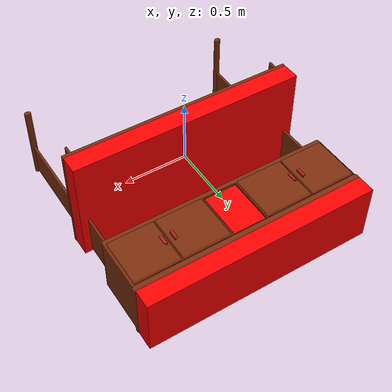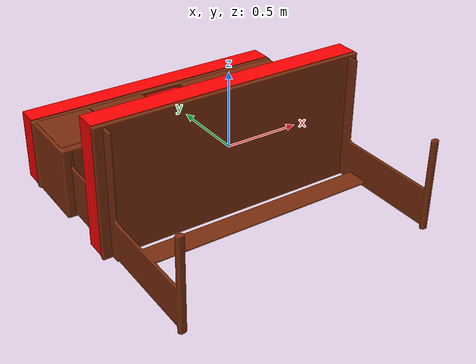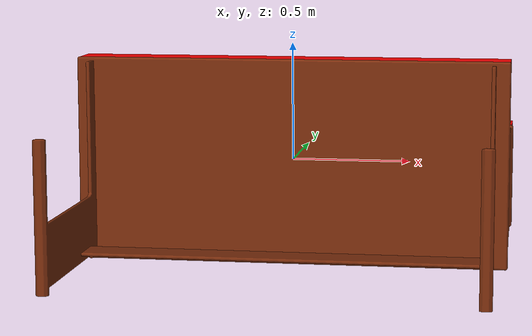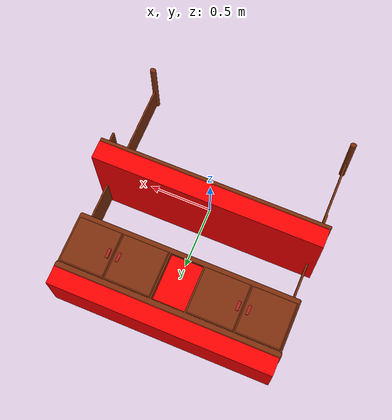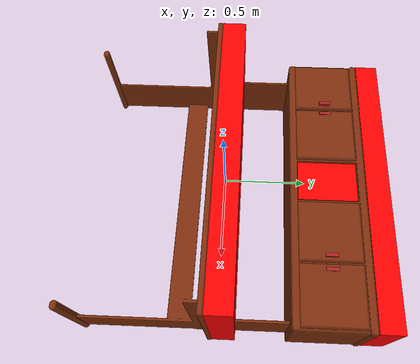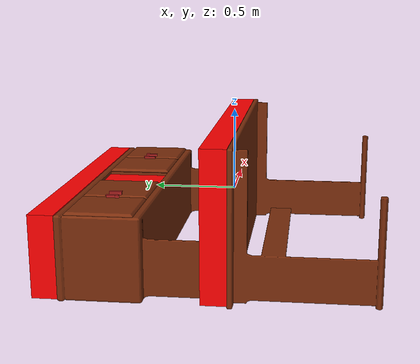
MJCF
<mujoco model="Desk_310_1">
  <compiler angle="radian" boundmass="0.01"/>

  <default>
    <default class="/">
      <default class="__VISUAL_MJT__">
        <geom contype="0" conaffinity="0"/>
      </default>
      <default class="__STRUCTURAL_MJT__">
        <geom contype="8" conaffinity="15" group="4" friction="0.9 0.9 0.001" solref="0.025" solimp="0.998 0.998"/>
      </default>
      <default class="__DYNAMIC_MJT__">
        <geom conaffinity="15" group="4" friction="0.9 0.9 0.001" solref="0.025" solimp="0.998 0.998"/>
      </default>
    </default>
  </default>

  <asset>
    <texture type="2d" name="LightWoodCounters3" file="LightWoodCounters.png"/>
    <texture type="2d" name="HammeredMetal_AlbedoTransparency_2" file="HammeredMetal_AlbedoTransparency.png"/>
    <material name="material_LightWoodCounters4" class="/" texture="LightWoodCounters3" rgba="0.686275 0.34902 0.156863 1" metallic="0" roughness="0.3" colormapwrap="repeat"/>
    <material name="material_LightWoodCounters3" class="/" texture="LightWoodCounters3" rgba="0.686275 0.34902 0.156863 1" metallic="0" roughness="0.3" clearcoat="0.18" clearcoatroughness="0" colormapwrap="repeat"/>
    <material name="material_HammeredMetal_AlbedoTransparency_2" class="/" texture="HammeredMetal_AlbedoTransparency_2" rgba="0.835294 0.807843 0.764706 1" metallic="1" roughness="0.13" colormapwrap="repeat"/>
    <mesh name="Desk_310_1_DeskMesh_0" class="/" content_type="model/obj" file="Desk_310_1_DeskMesh/Desk_310_1_DeskMesh_0.obj"/>
    <mesh name="Desk_310_1_DeskMesh_1" class="/" content_type="model/obj" file="Desk_310_1_DeskMesh/Desk_310_1_DeskMesh_1.obj"/>
    <mesh name="Desk_310_1_CabinetDoorMesh_02" class="/" content_type="model/obj" file="Desk_310_1_CabinetDoorMesh_02/Desk_310_1_CabinetDoorMesh_02.obj"/>
    <mesh name="Desk_310_1_handle_3_76mm_02" class="/" content_type="model/obj" file="Desk_310_1_handle_3_76mm_02/Desk_310_1_handle_3_76mm_02.obj"/>
    <mesh name="Desk_310_1_CabinetDoorMesh_03" class="/" content_type="model/obj" file="Desk_310_1_CabinetDoorMesh_03/Desk_310_1_CabinetDoorMesh_03.obj"/>
    <mesh name="Desk_310_1_handle_3_76mm_03" class="/" content_type="model/obj" file="Desk_310_1_handle_3_76mm_03/Desk_310_1_handle_3_76mm_03.obj"/>
    <mesh name="Desk_310_1_CabinetDoorMesh_01" class="/" content_type="model/obj" file="Desk_310_1_CabinetDoorMesh_01/Desk_310_1_CabinetDoorMesh_01.obj"/>
    <mesh name="Desk_310_1_handle_3_76mm_01" class="/" content_type="model/obj" file="Desk_310_1_handle_3_76mm_01/Desk_310_1_handle_3_76mm_01.obj"/>
    <mesh name="Desk_310_1_CabinetDoorMesh_04" class="/" content_type="model/obj" file="Desk_310_1_CabinetDoorMesh_04/Desk_310_1_CabinetDoorMesh_04.obj"/>
    <mesh name="Desk_310_1_handle_3_76mm_04" class="/" content_type="model/obj" file="Desk_310_1_handle_3_76mm_04/Desk_310_1_handle_3_76mm_04.obj"/>
    <mesh name="Desk_310_1_DeskMesh_0_collision_5" content_type="model/obj" file="Desk_310_1_DeskMesh/Desk_310_1_DeskMesh_0/Desk_310_1_DeskMesh_0_collision_5.obj"/>
    <mesh name="Desk_310_1_DeskMesh_0_collision_28" content_type="model/obj" file="Desk_310_1_DeskMesh/Desk_310_1_DeskMesh_0/Desk_310_1_DeskMesh_0_collision_28.obj"/>
    <mesh name="Desk_310_1_DeskMesh_0_collision_18" content_type="model/obj" file="Desk_310_1_DeskMesh/Desk_310_1_DeskMesh_0/Desk_310_1_DeskMesh_0_collision_18.obj"/>
    <mesh name="Desk_310_1_DeskMesh_0_collision_15" content_type="model/obj" file="Desk_310_1_DeskMesh/Desk_310_1_DeskMesh_0/Desk_310_1_DeskMesh_0_collision_15.obj"/>
    <mesh name="Desk_310_1_DeskMesh_0_collision_10" content_type="model/obj" file="Desk_310_1_DeskMesh/Desk_310_1_DeskMesh_0/Desk_310_1_DeskMesh_0_collision_10.obj"/>
    <mesh name="Desk_310_1_DeskMesh_0_collision_2" content_type="model/obj" file="Desk_310_1_DeskMesh/Desk_310_1_DeskMesh_0/Desk_310_1_DeskMesh_0_collision_2.obj"/>
    <mesh name="Desk_310_1_DeskMesh_0_collision_20" content_type="model/obj" file="Desk_310_1_DeskMesh/Desk_310_1_DeskMesh_0/Desk_310_1_DeskMesh_0_collision_20.obj"/>
    <mesh name="Desk_310_1_DeskMesh_0_collision_12" content_type="model/obj" file="Desk_310_1_DeskMesh/Desk_310_1_DeskMesh_0/Desk_310_1_DeskMesh_0_collision_12.obj"/>
    <mesh name="Desk_310_1_DeskMesh_0_collision_19" content_type="model/obj" file="Desk_310_1_DeskMesh/Desk_310_1_DeskMesh_0/Desk_310_1_DeskMesh_0_collision_19.obj"/>
    <mesh name="Desk_310_1_DeskMesh_0_collision_14" content_type="model/obj" file="Desk_310_1_DeskMesh/Desk_310_1_DeskMesh_0/Desk_310_1_DeskMesh_0_collision_14.obj"/>
    <mesh name="Desk_310_1_DeskMesh_0_collision_4" content_type="model/obj" file="Desk_310_1_DeskMesh/Desk_310_1_DeskMesh_0/Desk_310_1_DeskMesh_0_collision_4.obj"/>
    <mesh name="Desk_310_1_DeskMesh_0_collision_25" content_type="model/obj" file="Desk_310_1_DeskMesh/Desk_310_1_DeskMesh_0/Desk_310_1_DeskMesh_0_collision_25.obj"/>
    <mesh name="Desk_310_1_DeskMesh_0_collision_16" content_type="model/obj" file="Desk_310_1_DeskMesh/Desk_310_1_DeskMesh_0/Desk_310_1_DeskMesh_0_collision_16.obj"/>
    <mesh name="Desk_310_1_DeskMesh_0_collision_8" content_type="model/obj" file="Desk_310_1_DeskMesh/Desk_310_1_DeskMesh_0/Desk_310_1_DeskMesh_0_collision_8.obj"/>
    <mesh name="Desk_310_1_DeskMesh_0_collision_3" content_type="model/obj" file="Desk_310_1_DeskMesh/Desk_310_1_DeskMesh_0/Desk_310_1_DeskMesh_0_collision_3.obj"/>
    <mesh name="Desk_310_1_DeskMesh_0_collision_17" content_type="model/obj" file="Desk_310_1_DeskMesh/Desk_310_1_DeskMesh_0/Desk_310_1_DeskMesh_0_collision_17.obj"/>
    <mesh name="Desk_310_1_DeskMesh_0_collision_22" content_type="model/obj" file="Desk_310_1_DeskMesh/Desk_310_1_DeskMesh_0/Desk_310_1_DeskMesh_0_collision_22.obj"/>
    <mesh name="Desk_310_1_DeskMesh_0_collision_24" content_type="model/obj" file="Desk_310_1_DeskMesh/Desk_310_1_DeskMesh_0/Desk_310_1_DeskMesh_0_collision_24.obj"/>
    <mesh name="Desk_310_1_DeskMesh_0_collision_26" content_type="model/obj" file="Desk_310_1_DeskMesh/Desk_310_1_DeskMesh_0/Desk_310_1_DeskMesh_0_collision_26.obj"/>
    <mesh name="Desk_310_1_DeskMesh_0_collision_29" content_type="model/obj" file="Desk_310_1_DeskMesh/Desk_310_1_DeskMesh_0/Desk_310_1_DeskMesh_0_collision_29.obj"/>
    <mesh name="Desk_310_1_DeskMesh_0_collision_6" content_type="model/obj" file="Desk_310_1_DeskMesh/Desk_310_1_DeskMesh_0/Desk_310_1_DeskMesh_0_collision_6.obj"/>
    <mesh name="Desk_310_1_DeskMesh_0_collision_1" content_type="model/obj" file="Desk_310_1_DeskMesh/Desk_310_1_DeskMesh_0/Desk_310_1_DeskMesh_0_collision_1.obj"/>
    <mesh name="Desk_310_1_DeskMesh_0_collision_21" content_type="model/obj" file="Desk_310_1_DeskMesh/Desk_310_1_DeskMesh_0/Desk_310_1_DeskMesh_0_collision_21.obj"/>
    <mesh name="Desk_310_1_DeskMesh_0_collision_11" content_type="model/obj" file="Desk_310_1_DeskMesh/Desk_310_1_DeskMesh_0/Desk_310_1_DeskMesh_0_collision_11.obj"/>
    <mesh name="Desk_310_1_DeskMesh_0_collision_27" content_type="model/obj" file="Desk_310_1_DeskMesh/Desk_310_1_DeskMesh_0/Desk_310_1_DeskMesh_0_collision_27.obj"/>
    <mesh name="Desk_310_1_DeskMesh_0_collision_0" content_type="model/obj" file="Desk_310_1_DeskMesh/Desk_310_1_DeskMesh_0/Desk_310_1_DeskMesh_0_collision_0.obj"/>
    <mesh name="Desk_310_1_DeskMesh_0_collision_23" content_type="model/obj" file="Desk_310_1_DeskMesh/Desk_310_1_DeskMesh_0/Desk_310_1_DeskMesh_0_collision_23.obj"/>
    <mesh name="Desk_310_1_DeskMesh_0_collision_7" content_type="model/obj" file="Desk_310_1_DeskMesh/Desk_310_1_DeskMesh_0/Desk_310_1_DeskMesh_0_collision_7.obj"/>
    <mesh name="Desk_310_1_DeskMesh_0_collision_13" content_type="model/obj" file="Desk_310_1_DeskMesh/Desk_310_1_DeskMesh_0/Desk_310_1_DeskMesh_0_collision_13.obj"/>
    <mesh name="Desk_310_1_DeskMesh_1_collision_3" content_type="model/obj" file="Desk_310_1_DeskMesh/Desk_310_1_DeskMesh_1/Desk_310_1_DeskMesh_1_collision_3.obj"/>
    <mesh name="Desk_310_1_DeskMesh_1_collision_18" content_type="model/obj" file="Desk_310_1_DeskMesh/Desk_310_1_DeskMesh_1/Desk_310_1_DeskMesh_1_collision_18.obj"/>
    <mesh name="Desk_310_1_DeskMesh_1_collision_23" content_type="model/obj" file="Desk_310_1_DeskMesh/Desk_310_1_DeskMesh_1/Desk_310_1_DeskMesh_1_collision_23.obj"/>
    <mesh name="Desk_310_1_DeskMesh_1_collision_2" content_type="model/obj" file="Desk_310_1_DeskMesh/Desk_310_1_DeskMesh_1/Desk_310_1_DeskMesh_1_collision_2.obj"/>
    <mesh name="Desk_310_1_DeskMesh_1_collision_19" content_type="model/obj" file="Desk_310_1_DeskMesh/Desk_310_1_DeskMesh_1/Desk_310_1_DeskMesh_1_collision_19.obj"/>
    <mesh name="Desk_310_1_DeskMesh_1_collision_12" content_type="model/obj" file="Desk_310_1_DeskMesh/Desk_310_1_DeskMesh_1/Desk_310_1_DeskMesh_1_collision_12.obj"/>
    <mesh name="Desk_310_1_DeskMesh_1_collision_0" content_type="model/obj" file="Desk_310_1_DeskMesh/Desk_310_1_DeskMesh_1/Desk_310_1_DeskMesh_1_collision_0.obj"/>
    <mesh name="Desk_310_1_DeskMesh_1_collision_14" content_type="model/obj" file="Desk_310_1_DeskMesh/Desk_310_1_DeskMesh_1/Desk_310_1_DeskMesh_1_collision_14.obj"/>
    <mesh name="Desk_310_1_DeskMesh_1_collision_4" content_type="model/obj" file="Desk_310_1_DeskMesh/Desk_310_1_DeskMesh_1/Desk_310_1_DeskMesh_1_collision_4.obj"/>
    <mesh name="Desk_310_1_DeskMesh_1_collision_20" content_type="model/obj" file="Desk_310_1_DeskMesh/Desk_310_1_DeskMesh_1/Desk_310_1_DeskMesh_1_collision_20.obj"/>
    <mesh name="Desk_310_1_DeskMesh_1_collision_7" content_type="model/obj" file="Desk_310_1_DeskMesh/Desk_310_1_DeskMesh_1/Desk_310_1_DeskMesh_1_collision_7.obj"/>
    <mesh name="Desk_310_1_DeskMesh_1_collision_6" content_type="model/obj" file="Desk_310_1_DeskMesh/Desk_310_1_DeskMesh_1/Desk_310_1_DeskMesh_1_collision_6.obj"/>
    <mesh name="Desk_310_1_DeskMesh_1_collision_5" content_type="model/obj" file="Desk_310_1_DeskMesh/Desk_310_1_DeskMesh_1/Desk_310_1_DeskMesh_1_collision_5.obj"/>
    <mesh name="Desk_310_1_DeskMesh_1_collision_17" content_type="model/obj" file="Desk_310_1_DeskMesh/Desk_310_1_DeskMesh_1/Desk_310_1_DeskMesh_1_collision_17.obj"/>
    <mesh name="Desk_310_1_DeskMesh_1_collision_22" content_type="model/obj" file="Desk_310_1_DeskMesh/Desk_310_1_DeskMesh_1/Desk_310_1_DeskMesh_1_collision_22.obj"/>
    <mesh name="Desk_310_1_DeskMesh_1_collision_16" content_type="model/obj" file="Desk_310_1_DeskMesh/Desk_310_1_DeskMesh_1/Desk_310_1_DeskMesh_1_collision_16.obj"/>
    <mesh name="Desk_310_1_DeskMesh_1_collision_8" content_type="model/obj" file="Desk_310_1_DeskMesh/Desk_310_1_DeskMesh_1/Desk_310_1_DeskMesh_1_collision_8.obj"/>
    <mesh name="Desk_310_1_DeskMesh_1_collision_24" content_type="model/obj" file="Desk_310_1_DeskMesh/Desk_310_1_DeskMesh_1/Desk_310_1_DeskMesh_1_collision_24.obj"/>
    <mesh name="Desk_310_1_DeskMesh_1_collision_1" content_type="model/obj" file="Desk_310_1_DeskMesh/Desk_310_1_DeskMesh_1/Desk_310_1_DeskMesh_1_collision_1.obj"/>
    <mesh name="Desk_310_1_DeskMesh_1_collision_11" content_type="model/obj" file="Desk_310_1_DeskMesh/Desk_310_1_DeskMesh_1/Desk_310_1_DeskMesh_1_collision_11.obj"/>
    <mesh name="Desk_310_1_DeskMesh_1_collision_10" content_type="model/obj" file="Desk_310_1_DeskMesh/Desk_310_1_DeskMesh_1/Desk_310_1_DeskMesh_1_collision_10.obj"/>
    <mesh name="Desk_310_1_DeskMesh_1_collision_9" content_type="model/obj" file="Desk_310_1_DeskMesh/Desk_310_1_DeskMesh_1/Desk_310_1_DeskMesh_1_collision_9.obj"/>
    <mesh name="Desk_310_1_DeskMesh_1_collision_15" content_type="model/obj" file="Desk_310_1_DeskMesh/Desk_310_1_DeskMesh_1/Desk_310_1_DeskMesh_1_collision_15.obj"/>
    <mesh name="Desk_310_1_DeskMesh_1_collision_13" content_type="model/obj" file="Desk_310_1_DeskMesh/Desk_310_1_DeskMesh_1/Desk_310_1_DeskMesh_1_collision_13.obj"/>
    <mesh name="Desk_310_1_DeskMesh_1_collision_21" content_type="model/obj" file="Desk_310_1_DeskMesh/Desk_310_1_DeskMesh_1/Desk_310_1_DeskMesh_1_collision_21.obj"/>
    <mesh name="Desk_310_1_CabinetDoorMesh_02_collision_0" content_type="model/obj" file="Desk_310_1_CabinetDoorMesh_02/Desk_310_1_CabinetDoorMesh_02/Desk_310_1_CabinetDoorMesh_02_collision_0.obj"/>
    <mesh name="Desk_310_1_CabinetDoorMesh_03_collision_0" content_type="model/obj" file="Desk_310_1_CabinetDoorMesh_03/Desk_310_1_CabinetDoorMesh_03/Desk_310_1_CabinetDoorMesh_03_collision_0.obj"/>
    <mesh name="Desk_310_1_CabinetDoorMesh_01_collision_0" content_type="model/obj" file="Desk_310_1_CabinetDoorMesh_01/Desk_310_1_CabinetDoorMesh_01/Desk_310_1_CabinetDoorMesh_01_collision_0.obj"/>
    <mesh name="Desk_310_1_CabinetDoorMesh_04_collision_0" content_type="model/obj" file="Desk_310_1_CabinetDoorMesh_04/Desk_310_1_CabinetDoorMesh_04/Desk_310_1_CabinetDoorMesh_04_collision_0.obj"/>
    <mesh name="Desk_310_1_handle_3_76mm_02_collision_1" content_type="model/obj" file="Desk_310_1_handle_3_76mm_02/Desk_310_1_handle_3_76mm_02/Desk_310_1_handle_3_76mm_02_collision_1.obj"/>
    <mesh name="Desk_310_1_handle_3_76mm_02_collision_0" content_type="model/obj" file="Desk_310_1_handle_3_76mm_02/Desk_310_1_handle_3_76mm_02/Desk_310_1_handle_3_76mm_02_collision_0.obj"/>
    <mesh name="Desk_310_1_handle_3_76mm_03_collision_0" content_type="model/obj" file="Desk_310_1_handle_3_76mm_03/Desk_310_1_handle_3_76mm_03/Desk_310_1_handle_3_76mm_03_collision_0.obj"/>
    <mesh name="Desk_310_1_handle_3_76mm_03_collision_1" content_type="model/obj" file="Desk_310_1_handle_3_76mm_03/Desk_310_1_handle_3_76mm_03/Desk_310_1_handle_3_76mm_03_collision_1.obj"/>
    <mesh name="Desk_310_1_handle_3_76mm_01_collision_0" content_type="model/obj" file="Desk_310_1_handle_3_76mm_01/Desk_310_1_handle_3_76mm_01/Desk_310_1_handle_3_76mm_01_collision_0.obj"/>
    <mesh name="Desk_310_1_handle_3_76mm_01_collision_1" content_type="model/obj" file="Desk_310_1_handle_3_76mm_01/Desk_310_1_handle_3_76mm_01/Desk_310_1_handle_3_76mm_01_collision_1.obj"/>
    <mesh name="Desk_310_1_handle_3_76mm_04_collision_0" content_type="model/obj" file="Desk_310_1_handle_3_76mm_04/Desk_310_1_handle_3_76mm_04/Desk_310_1_handle_3_76mm_04_collision_0.obj"/>
    <mesh name="Desk_310_1_handle_3_76mm_04_collision_1" content_type="model/obj" file="Desk_310_1_handle_3_76mm_04/Desk_310_1_handle_3_76mm_04/Desk_310_1_handle_3_76mm_04_collision_1.obj"/>
  </asset>

  <worldbody>
    <body name="Desk_310_1">
      <body name="Desk_310_1_DeskMesh" pos="-0.00108 -0.884 -0.0039">
        <geom name="Desk_310_1_DeskMesh_0" class="__VISUAL_MJT__" type="mesh" density="160" material="material_LightWoodCounters4" mesh="Desk_310_1_DeskMesh_0"/>
        <geom name="Desk_310_1_DeskMesh_1" class="__VISUAL_MJT__" type="mesh" density="160" material="material_LightWoodCounters3" mesh="Desk_310_1_DeskMesh_1"/>
        <geom name="Desk_310_1_DeskMesh_Desk_310_1_DeskMesh_0_MeshCollider_0" class="__DYNAMIC_MJT__" type="mesh" density="160" rgba="0.678296 0.951096 0.336739 1" mesh="Desk_310_1_DeskMesh_0_collision_5"/>
        <geom name="Desk_310_1_DeskMesh_Desk_310_1_DeskMesh_0_MeshCollider_1" class="__DYNAMIC_MJT__" type="mesh" density="160" rgba="0.53053 0.750794 0.587283 1" mesh="Desk_310_1_DeskMesh_0_collision_28"/>
        <geom name="Desk_310_1_DeskMesh_Desk_310_1_DeskMesh_0_MeshCollider_2" class="__DYNAMIC_MJT__" type="mesh" density="160" rgba="0.0517538 0.23714 0.98183 1" mesh="Desk_310_1_DeskMesh_0_collision_18"/>
        <geom name="Desk_310_1_DeskMesh_Desk_310_1_DeskMesh_0_MeshCollider_3" class="__DYNAMIC_MJT__" type="mesh" density="160" rgba="0.262121 0.788895 0.854143 1" mesh="Desk_310_1_DeskMesh_0_collision_15"/>
        <geom name="Desk_310_1_DeskMesh_Desk_310_1_DeskMesh_0_MeshCollider_4" class="__DYNAMIC_MJT__" type="mesh" density="160" rgba="0.85074 0.39086 0.856247 1" mesh="Desk_310_1_DeskMesh_0_collision_10"/>
        <geom name="Desk_310_1_DeskMesh_Desk_310_1_DeskMesh_0_MeshCollider_5" class="__DYNAMIC_MJT__" type="mesh" density="160" rgba="0.384703 0.0291451 0.426568 1" mesh="Desk_310_1_DeskMesh_0_collision_2"/>
        <geom name="Desk_310_1_DeskMesh_Desk_310_1_DeskMesh_0_MeshCollider_6" class="__DYNAMIC_MJT__" type="mesh" density="160" rgba="0.389199 0.167586 0.213791 1" mesh="Desk_310_1_DeskMesh_0_collision_20"/>
        <geom name="Desk_310_1_DeskMesh_Desk_310_1_DeskMesh_0_MeshCollider_8" class="__DYNAMIC_MJT__" type="mesh" density="160" rgba="0.0291747 0.621879 0.671142 1" mesh="Desk_310_1_DeskMesh_0_collision_12"/>
        <geom name="Desk_310_1_DeskMesh_Desk_310_1_DeskMesh_0_MeshCollider_9" class="__DYNAMIC_MJT__" type="mesh" density="160" rgba="0.0444809 0.87775 0.244225 1" mesh="Desk_310_1_DeskMesh_0_collision_19"/>
        <geom name="Desk_310_1_DeskMesh_Desk_310_1_DeskMesh_0_MeshCollider_10" class="__DYNAMIC_MJT__" type="mesh" density="160" rgba="0.449488 0.916086 0.228162 1" mesh="Desk_310_1_DeskMesh_0_collision_14"/>
        <geom name="Desk_310_1_DeskMesh_Desk_310_1_DeskMesh_0_MeshCollider_11" class="__DYNAMIC_MJT__" type="mesh" density="160" rgba="0.582179 0.415215 0.309097 1" mesh="Desk_310_1_DeskMesh_0_collision_4"/>
        <geom name="Desk_310_1_DeskMesh_Desk_310_1_DeskMesh_0_MeshCollider_12" class="__DYNAMIC_MJT__" type="mesh" density="160" rgba="0.0499144 0.973909 0.196473 1" mesh="Desk_310_1_DeskMesh_0_collision_25"/>
        <geom name="Desk_310_1_DeskMesh_Desk_310_1_DeskMesh_0_MeshCollider_13" class="__DYNAMIC_MJT__" type="mesh" density="160" rgba="0.728669 0.573406 0.589658 1" mesh="Desk_310_1_DeskMesh_0_collision_16"/>
        <geom name="Desk_310_1_DeskMesh_Desk_310_1_DeskMesh_0_MeshCollider_14" class="__DYNAMIC_MJT__" type="mesh" density="160" rgba="0.0364696 0.734461 0.630564 1" mesh="Desk_310_1_DeskMesh_0_collision_8"/>
        <geom name="Desk_310_1_DeskMesh_Desk_310_1_DeskMesh_0_MeshCollider_15" class="__DYNAMIC_MJT__" type="mesh" density="160" rgba="0.688371 0.520608 0.405771 1" mesh="Desk_310_1_DeskMesh_0_collision_3"/>
        <geom name="Desk_310_1_DeskMesh_Desk_310_1_DeskMesh_0_MeshCollider_16" class="__DYNAMIC_MJT__" type="mesh" density="160" rgba="0.886222 0.857515 0.770415 1" mesh="Desk_310_1_DeskMesh_0_collision_17"/>
        <geom name="Desk_310_1_DeskMesh_Desk_310_1_DeskMesh_0_MeshCollider_17" class="__DYNAMIC_MJT__" type="mesh" density="160" rgba="0.979981 0.520857 0.445445 1" mesh="Desk_310_1_DeskMesh_0_collision_22"/>
        <geom name="Desk_310_1_DeskMesh_Desk_310_1_DeskMesh_0_MeshCollider_18" class="__DYNAMIC_MJT__" type="mesh" density="160" rgba="0.824166 0.554018 0.729073 1" mesh="Desk_310_1_DeskMesh_0_collision_24"/>
        <geom name="Desk_310_1_DeskMesh_Desk_310_1_DeskMesh_0_MeshCollider_19" class="__DYNAMIC_MJT__" type="mesh" density="160" rgba="0.306988 0.661513 0.19039 1" mesh="Desk_310_1_DeskMesh_0_collision_26"/>
        <geom name="Desk_310_1_DeskMesh_Desk_310_1_DeskMesh_0_MeshCollider_20" class="__DYNAMIC_MJT__" type="mesh" density="160" rgba="0.156197 0.39919 0.513313 1" mesh="Desk_310_1_DeskMesh_0_collision_29"/>
        <geom name="Desk_310_1_DeskMesh_Desk_310_1_DeskMesh_0_MeshCollider_21" class="__DYNAMIC_MJT__" type="mesh" density="160" rgba="0.534902 0.868026 0.30844 1" mesh="Desk_310_1_DeskMesh_0_collision_6"/>
        <geom name="Desk_310_1_DeskMesh_Desk_310_1_DeskMesh_0_MeshCollider_22" class="__DYNAMIC_MJT__" type="mesh" density="160" rgba="0.0917074 0.37306 0.28098 1" mesh="Desk_310_1_DeskMesh_0_collision_1"/>
        <geom name="Desk_310_1_DeskMesh_Desk_310_1_DeskMesh_0_MeshCollider_23" class="__DYNAMIC_MJT__" type="mesh" density="160" rgba="0.861562 0.596507 0.182305 1" mesh="Desk_310_1_DeskMesh_0_collision_21"/>
        <geom name="Desk_310_1_DeskMesh_Desk_310_1_DeskMesh_0_MeshCollider_24" class="__DYNAMIC_MJT__" type="mesh" density="160" rgba="0.721844 0.978452 0.24858 1" mesh="Desk_310_1_DeskMesh_0_collision_11"/>
        <geom name="Desk_310_1_DeskMesh_Desk_310_1_DeskMesh_0_MeshCollider_25" class="__DYNAMIC_MJT__" type="mesh" density="160" rgba="0.773113 0.677444 0.288542 1" mesh="Desk_310_1_DeskMesh_0_collision_27"/>
        <geom name="Desk_310_1_DeskMesh_Desk_310_1_DeskMesh_0_MeshCollider_26" class="__DYNAMIC_MJT__" type="mesh" density="160" rgba="0.609028 0.61634 0.282734 1" mesh="Desk_310_1_DeskMesh_0_collision_0"/>
        <geom name="Desk_310_1_DeskMesh_Desk_310_1_DeskMesh_0_MeshCollider_27" class="__DYNAMIC_MJT__" type="mesh" density="160" rgba="0.253245 0.459655 0.877698 1" mesh="Desk_310_1_DeskMesh_0_collision_23"/>
        <geom name="Desk_310_1_DeskMesh_Desk_310_1_DeskMesh_0_MeshCollider_28" class="__DYNAMIC_MJT__" type="mesh" density="160" rgba="0.643303 0.902584 0.21426 1" mesh="Desk_310_1_DeskMesh_0_collision_7"/>
        <geom name="Desk_310_1_DeskMesh_Desk_310_1_DeskMesh_0_MeshCollider_29" class="__DYNAMIC_MJT__" type="mesh" density="160" rgba="0.815406 0.00141215 0.565171 1" mesh="Desk_310_1_DeskMesh_0_collision_13"/>
        <geom name="Desk_310_1_DeskMesh_Desk_310_1_DeskMesh_1_MeshCollider_0" class="__DYNAMIC_MJT__" type="mesh" density="160" rgba="0.0432198 0.182461 0.816072 1" mesh="Desk_310_1_DeskMesh_1_collision_3"/>
        <geom name="Desk_310_1_DeskMesh_Desk_310_1_DeskMesh_1_MeshCollider_1" class="__DYNAMIC_MJT__" type="mesh" density="160" rgba="0.92528 0.199422 0.750119 1" mesh="Desk_310_1_DeskMesh_1_collision_18"/>
        <geom name="Desk_310_1_DeskMesh_Desk_310_1_DeskMesh_1_MeshCollider_2" class="__DYNAMIC_MJT__" type="mesh" density="160" rgba="0.465305 0.441322 0.480376 1" mesh="Desk_310_1_DeskMesh_1_collision_23"/>
        <geom name="Desk_310_1_DeskMesh_Desk_310_1_DeskMesh_1_MeshCollider_3" class="__DYNAMIC_MJT__" type="mesh" density="160" rgba="0.532157 0.763752 0.192419 1" mesh="Desk_310_1_DeskMesh_1_collision_2"/>
        <geom name="Desk_310_1_DeskMesh_Desk_310_1_DeskMesh_1_MeshCollider_4" class="__DYNAMIC_MJT__" type="mesh" density="160" rgba="0.0656561 0.429409 0.470446 1" mesh="Desk_310_1_DeskMesh_1_collision_19"/>
        <geom name="Desk_310_1_DeskMesh_Desk_310_1_DeskMesh_1_MeshCollider_5" class="__DYNAMIC_MJT__" type="mesh" density="160" rgba="0.409229 0.202464 0.570126 1" mesh="Desk_310_1_DeskMesh_1_collision_12"/>
        <geom name="Desk_310_1_DeskMesh_Desk_310_1_DeskMesh_1_MeshCollider_6" class="__DYNAMIC_MJT__" type="mesh" density="160" rgba="0.530026 0.501355 0.248288 1" mesh="Desk_310_1_DeskMesh_1_collision_0"/>
        <geom name="Desk_310_1_DeskMesh_Desk_310_1_DeskMesh_1_MeshCollider_7" class="__DYNAMIC_MJT__" type="mesh" density="160" rgba="0.324049 0.129351 0.380738 1" mesh="Desk_310_1_DeskMesh_1_collision_14"/>
        <geom name="Desk_310_1_DeskMesh_Desk_310_1_DeskMesh_1_MeshCollider_8" class="__DYNAMIC_MJT__" type="mesh" density="160" rgba="0.368479 0.62185 0.000916577 1" mesh="Desk_310_1_DeskMesh_1_collision_4"/>
        <geom name="Desk_310_1_DeskMesh_Desk_310_1_DeskMesh_1_MeshCollider_9" class="__DYNAMIC_MJT__" type="mesh" density="160" rgba="0.574879 0.370882 0.609094 1" mesh="Desk_310_1_DeskMesh_1_collision_20"/>
        <geom name="Desk_310_1_DeskMesh_Desk_310_1_DeskMesh_1_MeshCollider_10" class="__DYNAMIC_MJT__" type="mesh" density="160" rgba="0.526905 0.954325 0.852799 1" mesh="Desk_310_1_DeskMesh_1_collision_7"/>
        <geom name="Desk_310_1_DeskMesh_Desk_310_1_DeskMesh_1_MeshCollider_11" class="__DYNAMIC_MJT__" type="mesh" density="160" rgba="0.381265 0.901868 0.176184 1" mesh="Desk_310_1_DeskMesh_1_collision_6"/>
        <geom name="Desk_310_1_DeskMesh_Desk_310_1_DeskMesh_1_MeshCollider_12" class="__DYNAMIC_MJT__" type="mesh" density="160" rgba="0.963339 0.0280249 0.917246 1" mesh="Desk_310_1_DeskMesh_1_collision_5"/>
        <geom name="Desk_310_1_DeskMesh_Desk_310_1_DeskMesh_1_MeshCollider_13" class="__DYNAMIC_MJT__" type="mesh" density="160" rgba="0.697725 0.271271 0.763027 1" mesh="Desk_310_1_DeskMesh_1_collision_17"/>
        <geom name="Desk_310_1_DeskMesh_Desk_310_1_DeskMesh_1_MeshCollider_14" class="__DYNAMIC_MJT__" type="mesh" density="160" rgba="0.726854 0.369533 0.66483 1" mesh="Desk_310_1_DeskMesh_1_collision_22"/>
        <geom name="Desk_310_1_DeskMesh_Desk_310_1_DeskMesh_1_MeshCollider_15" class="__DYNAMIC_MJT__" type="mesh" density="160" rgba="0.816327 0.252435 0.634413 1" mesh="Desk_310_1_DeskMesh_1_collision_16"/>
        <geom name="Desk_310_1_DeskMesh_Desk_310_1_DeskMesh_1_MeshCollider_16" class="__DYNAMIC_MJT__" type="mesh" density="160" rgba="0.980943 0.297925 0.332138 1" mesh="Desk_310_1_DeskMesh_1_collision_8"/>
        <geom name="Desk_310_1_DeskMesh_Desk_310_1_DeskMesh_1_MeshCollider_17" class="__DYNAMIC_MJT__" type="mesh" density="160" rgba="0.361253 0.474052 0.275541 1" mesh="Desk_310_1_DeskMesh_1_collision_24"/>
        <geom name="Desk_310_1_DeskMesh_Desk_310_1_DeskMesh_1_MeshCollider_18" class="__DYNAMIC_MJT__" type="mesh" density="160" rgba="0.548874 0.679882 0.26148 1" mesh="Desk_310_1_DeskMesh_1_collision_1"/>
        <geom name="Desk_310_1_DeskMesh_Desk_310_1_DeskMesh_1_MeshCollider_19" class="__DYNAMIC_MJT__" type="mesh" density="160" rgba="0.141717 0.52578 0.000922206 1" mesh="Desk_310_1_DeskMesh_1_collision_11"/>
        <geom name="Desk_310_1_DeskMesh_Desk_310_1_DeskMesh_1_MeshCollider_20" class="__DYNAMIC_MJT__" type="mesh" density="160" rgba="0.967504 0.413082 0.453734 1" mesh="Desk_310_1_DeskMesh_1_collision_10"/>
        <geom name="Desk_310_1_DeskMesh_Desk_310_1_DeskMesh_1_MeshCollider_21" class="__DYNAMIC_MJT__" type="mesh" density="160" rgba="0.253752 0.353736 0.366839 1" mesh="Desk_310_1_DeskMesh_1_collision_9"/>
        <geom name="Desk_310_1_DeskMesh_Desk_310_1_DeskMesh_1_MeshCollider_22" class="__DYNAMIC_MJT__" type="mesh" density="160" rgba="0.370792 0.0191105 0.111519 1" mesh="Desk_310_1_DeskMesh_1_collision_15"/>
        <geom name="Desk_310_1_DeskMesh_Desk_310_1_DeskMesh_1_MeshCollider_23" class="__DYNAMIC_MJT__" type="mesh" density="160" rgba="0.226683 0.244234 0.951218 1" mesh="Desk_310_1_DeskMesh_1_collision_13"/>
        <geom name="Desk_310_1_DeskMesh_Desk_310_1_DeskMesh_1_MeshCollider_24" class="__DYNAMIC_MJT__" type="mesh" density="160" rgba="0.213499 0.961681 0.474003 1" mesh="Desk_310_1_DeskMesh_1_collision_21"/>
        <site name="Desk_310_1_DeskMesh_Receptacle_0" class="/" pos="0.00113094 0.906268 0.00632234" quat="0 1 0 0" size="0.921527 0.0732682 0.432285" type="box" rgba="1 0 0 1"/>
        <site name="Desk_310_1_DeskMesh_Receptacle_1" class="/" pos="0.00113082 1.84567 -0.185835" quat="0 1 0 0" size="0.921527 0.0732682 0.239933" type="box" rgba="1 0 0 1"/>
        <site name="Desk_310_1_DeskMesh_Receptacle_2" class="/" pos="-0.00473142 1.53191 -0.159239" quat="0 1 0 0" size="0.131429 0.186728 0.196312" type="box" rgba="1 0 0 1"/>
        <site name="Desk_310_1_DeskMesh_Receptacle_3" class="/" pos="-0.344069 1.53117 -0.156457" quat="0 1 0 0" size="0.183548 0.184952 0.204138" type="box" rgba="1 0 0 1"/>
        <site name="Desk_310_1_DeskMesh_Receptacle_4" class="/" pos="0.350116 1.53021 -0.155319" quat="0 1 0 0" size="0.174296 0.185916 0.203269" type="box" rgba="1 0 0 1"/>
        <site name="Desk_310_1_DeskMesh_Receptacle_5" class="/" pos="-0.728237 1.53187 -0.15524" quat="0 1 0 0" size="0.176412 0.184925 0.204133" type="box" rgba="1 0 0 1"/>
        <site name="Desk_310_1_DeskMesh_Receptacle_6" class="/" pos="0.719028 1.53117 -0.155829" quat="0 1 0 0" size="0.177572 0.185904 0.204653" type="box" rgba="1 0 0 1"/>
        <body name="Desk_310_1_CabinetDoorMesh_02" pos="-0.148602 1.53117 0.0545616">
          <joint name="Desk_310_1_joint" class="/" pos="0 0 0" axis="0 -1 0" range="-1.5708 0" damping="0.1" frictionloss="1.2"/>
          <geom name="Desk_310_1_CabinetDoorMesh_02" class="__VISUAL_MJT__" type="mesh" material="material_LightWoodCounters3" mesh="Desk_310_1_CabinetDoorMesh_02"/>
          <geom name="Desk_310_1_CabinetDoorMesh_02_Desk_310_1_CabinetDoorMesh_02_MeshCollider_0" class="__DYNAMIC_MJT__" type="mesh" rgba="0.807576 0.231909 0.699529 1" mesh="Desk_310_1_CabinetDoorMesh_02_collision_0"/>
          <body name="Desk_310_1_handle_3_76mm_02" pos="-0.353 0 0" quat="0.707107 0 0 -0.707107">
            <geom name="Desk_310_1_handle_3_76mm_02" class="__VISUAL_MJT__" type="mesh" material="material_HammeredMetal_AlbedoTransparency_2" mesh="Desk_310_1_handle_3_76mm_02"/>
            <geom name="Desk_310_1_handle_3_76mm_02_Desk_310_1_handle_3_76mm_02_MeshCollider_0" class="__DYNAMIC_MJT__" type="mesh" rgba="0.202549 0.907376 0.784579 1" mesh="Desk_310_1_handle_3_76mm_02_collision_1"/>
            <geom name="Desk_310_1_handle_3_76mm_02_Desk_310_1_handle_3_76mm_02_MeshCollider_1" class="__DYNAMIC_MJT__" type="mesh" rgba="0.191149 0.372851 0.132229 1" mesh="Desk_310_1_handle_3_76mm_02_collision_0"/>
          </body>
        </body>
        <body name="Desk_310_1_CabinetDoorMesh_03" pos="0.903774 1.53117 0.0529699">
          <joint name="Desk_310_1_CabinetDoorMesh_03__1" class="/" pos="0 0 0" axis="0 -1 0" range="-1.5708 0" damping="0.1" frictionloss="1.2"/>
          <geom name="Desk_310_1_CabinetDoorMesh_03" class="__VISUAL_MJT__" type="mesh" material="material_LightWoodCounters3" mesh="Desk_310_1_CabinetDoorMesh_03"/>
          <geom name="Desk_310_1_CabinetDoorMesh_03_Desk_310_1_CabinetDoorMesh_03_MeshCollider_0" class="__DYNAMIC_MJT__" type="mesh" rgba="0.18463 0.0682945 0.940079 1" mesh="Desk_310_1_CabinetDoorMesh_03_collision_0"/>
          <body name="Desk_310_1_handle_3_76mm_03" pos="-0.336 0 0" quat="0.707107 0 0 -0.707107">
            <geom name="Desk_310_1_handle_3_76mm_03" class="__VISUAL_MJT__" type="mesh" material="material_HammeredMetal_AlbedoTransparency_2" mesh="Desk_310_1_handle_3_76mm_03"/>
            <geom name="Desk_310_1_handle_3_76mm_03_Desk_310_1_handle_3_76mm_03_MeshCollider_0" class="__DYNAMIC_MJT__" type="mesh" rgba="0.727019 0.312341 0.662359 1" mesh="Desk_310_1_handle_3_76mm_03_collision_0"/>
            <geom name="Desk_310_1_handle_3_76mm_03_Desk_310_1_handle_3_76mm_03_MeshCollider_1" class="__DYNAMIC_MJT__" type="mesh" rgba="0.951074 0.616792 0.731893 1" mesh="Desk_310_1_handle_3_76mm_03_collision_1"/>
          </body>
        </body>
        <body name="Desk_310_1_CabinetDoorMesh_01" pos="-0.903774 1.53117 0.0545616">
          <joint name="Desk_310_1_CabinetDoorMesh_01__1" class="/" pos="0 0 0" axis="0 -1 0" range="0 1.5708" damping="0.1" frictionloss="1.2"/>
          <geom name="Desk_310_1_CabinetDoorMesh_01" class="__VISUAL_MJT__" type="mesh" material="material_LightWoodCounters3" mesh="Desk_310_1_CabinetDoorMesh_01"/>
          <geom name="Desk_310_1_CabinetDoorMesh_01_Desk_310_1_CabinetDoorMesh_01_MeshCollider_0" class="__DYNAMIC_MJT__" type="mesh" rgba="0.324416 0.590064 0.753457 1" mesh="Desk_310_1_CabinetDoorMesh_01_collision_0"/>
          <body name="Desk_310_1_handle_3_76mm_01" pos="0.335 0 0" quat="0.707107 0 0 0.707107">
            <geom name="Desk_310_1_handle_3_76mm_01" class="__VISUAL_MJT__" type="mesh" material="material_HammeredMetal_AlbedoTransparency_2" mesh="Desk_310_1_handle_3_76mm_01"/>
            <geom name="Desk_310_1_handle_3_76mm_01_Desk_310_1_handle_3_76mm_01_MeshCollider_0" class="__DYNAMIC_MJT__" type="mesh" rgba="0.98835 0.0867262 0.303882 1" mesh="Desk_310_1_handle_3_76mm_01_collision_0"/>
            <geom name="Desk_310_1_handle_3_76mm_01_Desk_310_1_handle_3_76mm_01_MeshCollider_1" class="__DYNAMIC_MJT__" type="mesh" rgba="0.190708 0.351 0.0678005 1" mesh="Desk_310_1_handle_3_76mm_01_collision_1"/>
          </body>
        </body>
        <body name="Desk_310_1_CabinetDoorMesh_04" pos="0.148602 1.53117 0.0529699">
          <joint name="Desk_310_1_CabinetDoorMesh_04__1" class="/" pos="0 0 0" axis="0 -1 0" range="0 1.5708" damping="0.1" frictionloss="1.2"/>
          <geom name="Desk_310_1_CabinetDoorMesh_04" class="__VISUAL_MJT__" type="mesh" material="material_LightWoodCounters3" mesh="Desk_310_1_CabinetDoorMesh_04"/>
          <geom name="Desk_310_1_CabinetDoorMesh_04_Desk_310_1_CabinetDoorMesh_04_MeshCollider_0" class="__DYNAMIC_MJT__" type="mesh" rgba="0.196626 0.990094 0.995068 1" mesh="Desk_310_1_CabinetDoorMesh_04_collision_0"/>
          <body name="Desk_310_1_handle_3_76mm_04" pos="0.35 0 0" quat="0.707107 0 0 0.707107">
            <geom name="Desk_310_1_handle_3_76mm_04" class="__VISUAL_MJT__" type="mesh" material="material_HammeredMetal_AlbedoTransparency_2" mesh="Desk_310_1_handle_3_76mm_04"/>
            <geom name="Desk_310_1_handle_3_76mm_04_Desk_310_1_handle_3_76mm_04_MeshCollider_0" class="__DYNAMIC_MJT__" type="mesh" rgba="0.950321 0.0981061 0.0575255 1" mesh="Desk_310_1_handle_3_76mm_04_collision_0"/>
            <geom name="Desk_310_1_handle_3_76mm_04_Desk_310_1_handle_3_76mm_04_MeshCollider_1" class="__DYNAMIC_MJT__" type="mesh" rgba="0.958682 0.842225 0.563617 1" mesh="Desk_310_1_handle_3_76mm_04_collision_1"/>
          </body>
        </body>
      </body>
    </body>
  </worldbody>

  <contact>
    <exclude name="//unnamed_contact_0" body1="Desk_310_1_DeskMesh" body2="Desk_310_1_CabinetDoorMesh_02"/>
    <exclude body1="Desk_310_1_DeskMesh" body2="Desk_310_1_CabinetDoorMesh_02"/>
    <exclude body1="Desk_310_1_DeskMesh" body2="Desk_310_1_handle_3_76mm_02"/>
    <exclude name="//unnamed_contact_1" body1="Desk_310_1_DeskMesh" body2="Desk_310_1_CabinetDoorMesh_03"/>
    <exclude body1="Desk_310_1_DeskMesh" body2="Desk_310_1_CabinetDoorMesh_03"/>
    <exclude body1="Desk_310_1_DeskMesh" body2="Desk_310_1_handle_3_76mm_03"/>
    <exclude name="//unnamed_contact_2" body1="Desk_310_1_DeskMesh" body2="Desk_310_1_CabinetDoorMesh_01"/>
    <exclude body1="Desk_310_1_DeskMesh" body2="Desk_310_1_CabinetDoorMesh_01"/>
    <exclude body1="Desk_310_1_DeskMesh" body2="Desk_310_1_handle_3_76mm_01"/>
    <exclude name="//unnamed_contact_3" body1="Desk_310_1_DeskMesh" body2="Desk_310_1_CabinetDoorMesh_04"/>
    <exclude body1="Desk_310_1_DeskMesh" body2="Desk_310_1_CabinetDoorMesh_04"/>
    <exclude body1="Desk_310_1_DeskMesh" body2="Desk_310_1_handle_3_76mm_04"/>
    <exclude body1="Desk_310_1_CabinetDoorMesh_02" body2="Desk_310_1_handle_3_76mm_02"/>
    <exclude body1="Desk_310_1_CabinetDoorMesh_02" body2="Desk_310_1_CabinetDoorMesh_03"/>
    <exclude body1="Desk_310_1_CabinetDoorMesh_02" body2="Desk_310_1_handle_3_76mm_03"/>
    <exclude body1="Desk_310_1_CabinetDoorMesh_02" body2="Desk_310_1_CabinetDoorMesh_01"/>
    <exclude body1="Desk_310_1_CabinetDoorMesh_02" body2="Desk_310_1_handle_3_76mm_01"/>
    <exclude body1="Desk_310_1_CabinetDoorMesh_02" body2="Desk_310_1_CabinetDoorMesh_04"/>
    <exclude body1="Desk_310_1_CabinetDoorMesh_02" body2="Desk_310_1_handle_3_76mm_04"/>
    <exclude body1="Desk_310_1_handle_3_76mm_02" body2="Desk_310_1_CabinetDoorMesh_03"/>
    <exclude body1="Desk_310_1_handle_3_76mm_02" body2="Desk_310_1_handle_3_76mm_03"/>
    <exclude body1="Desk_310_1_handle_3_76mm_02" body2="Desk_310_1_CabinetDoorMesh_01"/>
    <exclude body1="Desk_310_1_handle_3_76mm_02" body2="Desk_310_1_handle_3_76mm_01"/>
    <exclude body1="Desk_310_1_handle_3_76mm_02" body2="Desk_310_1_CabinetDoorMesh_04"/>
    <exclude body1="Desk_310_1_handle_3_76mm_02" body2="Desk_310_1_handle_3_76mm_04"/>
    <exclude body1="Desk_310_1_CabinetDoorMesh_03" body2="Desk_310_1_handle_3_76mm_03"/>
    <exclude body1="Desk_310_1_CabinetDoorMesh_03" body2="Desk_310_1_CabinetDoorMesh_01"/>
    <exclude body1="Desk_310_1_CabinetDoorMesh_03" body2="Desk_310_1_handle_3_76mm_01"/>
    <exclude body1="Desk_310_1_CabinetDoorMesh_03" body2="Desk_310_1_CabinetDoorMesh_04"/>
    <exclude body1="Desk_310_1_CabinetDoorMesh_03" body2="Desk_310_1_handle_3_76mm_04"/>
    <exclude body1="Desk_310_1_handle_3_76mm_03" body2="Desk_310_1_CabinetDoorMesh_01"/>
    <exclude body1="Desk_310_1_handle_3_76mm_03" body2="Desk_310_1_handle_3_76mm_01"/>
    <exclude body1="Desk_310_1_handle_3_76mm_03" body2="Desk_310_1_CabinetDoorMesh_04"/>
    <exclude body1="Desk_310_1_handle_3_76mm_03" body2="Desk_310_1_handle_3_76mm_04"/>
    <exclude body1="Desk_310_1_CabinetDoorMesh_01" body2="Desk_310_1_handle_3_76mm_01"/>
    <exclude body1="Desk_310_1_CabinetDoorMesh_01" body2="Desk_310_1_CabinetDoorMesh_04"/>
    <exclude body1="Desk_310_1_CabinetDoorMesh_01" body2="Desk_310_1_handle_3_76mm_04"/>
    <exclude body1="Desk_310_1_handle_3_76mm_01" body2="Desk_310_1_CabinetDoorMesh_04"/>
    <exclude body1="Desk_310_1_handle_3_76mm_01" body2="Desk_310_1_handle_3_76mm_04"/>
    <exclude body1="Desk_310_1_CabinetDoorMesh_04" body2="Desk_310_1_handle_3_76mm_04"/>
  </contact>
</mujoco>
